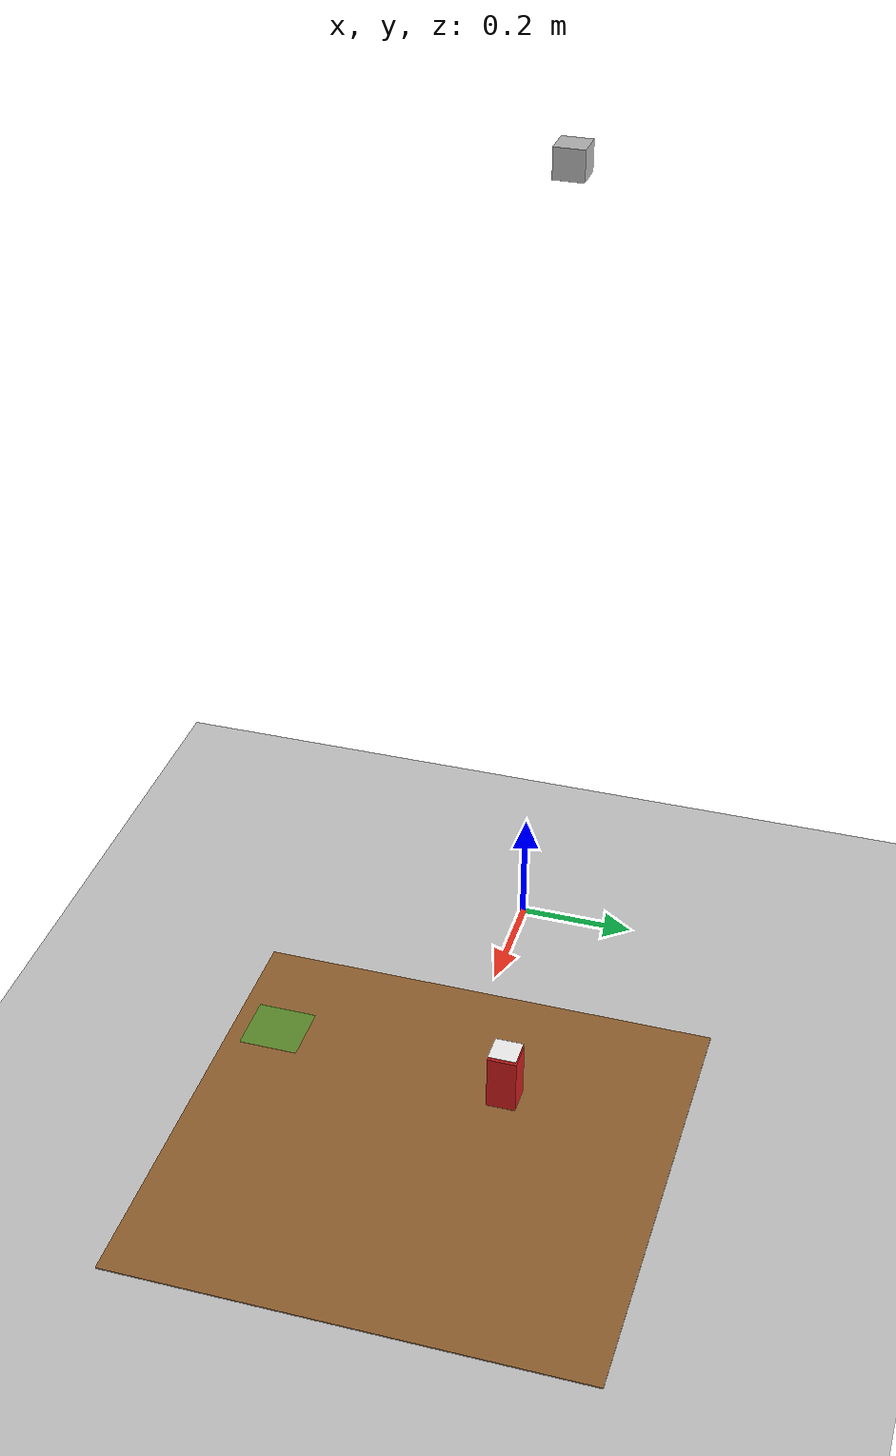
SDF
<sdf version='1.10'>
  <world name='empty'>
    <physics name='1ms' type='ignored'>
      <max_step_size>0.001</max_step_size>
      <real_time_factor>1</real_time_factor>
      <real_time_update_rate>1000</real_time_update_rate>
    </physics>
    <plugin name='gz::sim::systems::Physics' filename='gz-sim-physics-system'/>
    <plugin name='gz::sim::systems::UserCommands' filename='gz-sim-user-commands-system'/>
    <plugin name='gz::sim::systems::SceneBroadcaster' filename='gz-sim-scene-broadcaster-system'/>
    <plugin name='gz::sim::systems::Contact' filename='gz-sim-contact-system'/>
    <plugin
      filename="gz-sim-sensors-system"
      name="gz::sim::systems::Sensors">
      <render_engine>ogre2</render_engine>
    </plugin>
    <gravity>0 0 -9.8000000000000007</gravity>
    <magnetic_field>5.5644999999999998e-06 2.2875799999999999e-05 -4.2388400000000002e-05</magnetic_field>
    <atmosphere type='adiabatic'/>
    <scene>
      <ambient>0.400000006 0.400000006 0.400000006 1</ambient>
      <background>0.699999988 0.699999988 0.699999988 1</background>
      <shadows>true</shadows>
    </scene>
    <model name='ground_plane'>
      <static>true</static>
      <link name='link'>
        <collision name='collision'>
          <geometry>
            <plane>
              <normal>0 0 1</normal>
              <size>100 100</size>
            </plane>
          </geometry>
          <surface>
            <friction>
              <ode/>
            </friction>
            <bounce/>
            <contact/>
          </surface>
        </collision>
        <visual name='visual'>
          <geometry>
            <plane>
              <normal>0 0 1</normal>
              <size>100 100</size>
            </plane>
          </geometry>
          <material>
            <ambient>0.800000012 0.800000012 0.800000012 1</ambient>
            <diffuse>0.800000012 0.800000012 0.800000012 1</diffuse>
            <specular>0.800000012 0.800000012 0.800000012 1</specular>
          </material>
        </visual>
        <pose>0 0 0 0 0 0</pose>
        <inertial>
          <pose>0 0 0 0 0 0</pose>
          <mass>1</mass>
          <inertia>
            <ixx>1</ixx>
            <ixy>0</ixy>
            <ixz>0</ixz>
            <iyy>1</iyy>
            <iyz>0</iyz>
            <izz>1</izz>
          </inertia>
        </inertial>
        <enable_wind>false</enable_wind>
      </link>
      <pose>0 0 0 0 0 0</pose>
      <self_collide>false</self_collide>
    </model>
    <light name='sun' type='directional'>
      <pose>0 0 5 0 0 0</pose>
      <cast_shadows>true</cast_shadows>
      <intensity>1</intensity>
      <direction>-0.5 0.10000000000000001 -0.90000000000000002</direction>
      <diffuse>0.800000012 0.800000012 0.800000012 1</diffuse>
      <specular>0.200000003 0.200000003 0.200000003 1</specular>
      <attenuation>
        <range>1000</range>
        <linear>0.01</linear>
        <constant>0.90000000000000002</constant>
        <quadratic>0.001</quadratic>
      </attenuation>
      <spot>
        <inner_angle>0</inner_angle>
        <outer_angle>0</outer_angle>
        <falloff>0</falloff>
      </spot>
    </light>

    <model name="camera">
      <static>true</static>
      <pose>0 0 1.5 0 1.57 0</pose>
      <link name="link">
        <pose>0.05 0.05 0.05 0 0 0</pose>
        <inertial>
          <mass>0.1</mass>
          <inertia>
            <ixx>0.000166667</ixx>
            <iyy>0.000166667</iyy>
            <izz>0.000166667</izz>
          </inertia>
        </inertial>
        <collision name="collision">
          <geometry>
            <box>
              <size>0.05 0.05 0.05</size>
            </box>
          </geometry>
        </collision>
        <visual name="visual">
          <geometry>
            <box>
              <size>0.05 0.05 0.05</size>
            </box>
          </geometry>
        </visual>
        <sensor name="camera" type="camera">
          <camera>
            <horizontal_fov>1.047</horizontal_fov>
            <image>
              <width>1000</width>
              <height>1000</height>
            </image>
            <clip>
              <near>0.1</near>
              <far>100</far>
            </clip>
          </camera>
          <always_on>1</always_on>
          <update_rate>30</update_rate>
          <visualize>false</visualize>
          <topic>camera</topic>
        </sensor>
      </link>
    </model>

    <!-- TABLE DE TRAVAIL (Static - Support pour objet) -->
    <model name="work_table">
      <static>true</static>
      <pose>0.65 0.0 -0.025 0 0 0</pose>
      <link name="table_link">
        <inertial>
          <mass>10.0</mass>
          <inertia>
            <ixx>0.5</ixx>
            <iyy>0.5</iyy>
            <izz>0.4</izz>
          </inertia>
        </inertial>

        <!-- Surface de collision (top) -->
        <collision name="table_top_collision">
          <pose>0 0 0 0 0 0</pose>
          <geometry>
            <box>
              <size>0.8 0.8 0.05</size>
            </box>
          </geometry>
          <surface>
            <friction>
              <ode>
                <mu>0.3</mu>
                <mu2>0.3</mu2>
              </ode>
            </friction>
            <bounce>
              <restitution_coefficient>0.1</restitution_coefficient>
            </bounce>
          </surface>
        </collision>

        <!-- Visuel identique -->
        <visual name="table_top_visual">
          <pose>0 0 0 0 0 0</pose>
          <geometry>
            <box>
              <size>0.8 0.8 0.05</size>
            </box>
          </geometry>
          <material>
            <ambient>0.6 0.4 0.2 1</ambient>
            <diffuse>0.6 0.4 0.2 1</diffuse>
            <specular>0.1 0.1 0.1 1</specular>
          </material>
        </visual>
      </link>
    </model>

    <!-- OBJET À SAISIR (Dynamic - Saisi par le gripper) -->
    <model name="pick_object">
      <static>false</static>
      <pose>0.5 0.1 0.05 0 0 0</pose>
      <link name="object_link">
        <inertial>
          <mass>0.2</mass>
          <inertia>
            <ixx>0.000333</ixx>
            <iyy>0.000333</iyy>
            <izz>0.000333</izz>
          </inertia>
        </inertial>

        <!-- Géométrie de collision -->
        <collision name="object_collision">
          <geometry>
            <box>
              <size>0.05 0.05 0.10</size>
            </box>
          </geometry>
          <surface>
            <friction>
              <ode>
                <mu>0.5</mu>
                <mu2>0.5</mu2>
              </ode>
            </friction>
            <bounce>
              <restitution_coefficient>0.2</restitution_coefficient>
            </bounce>
            <contact>
              <ode>
                <kp>100000</kp>
                <kd>1</kd>
                <max_vel>0.1</max_vel>
                <min_depth>0.001</min_depth>
              </ode>
            </contact>
          </surface>
        </collision>

        <!-- Visuel rouge vif (bien visible) -->
        <visual name="object_visual">
          <geometry>
            <box>
              <size>0.05 0.05 0.10</size>
            </box>
          </geometry>
          <material>
            <ambient>0.8 0.1 0.1 1</ambient>
            <diffuse>0.8 0.1 0.1 1</diffuse>
            <specular>0.3 0.3 0.3 1</specular>
          </material>
        </visual>

        <!-- Marqueur de référence (top) -->
        <visual name="object_marker_visual">
          <pose>0 0 0.055 0 0 0</pose>
          <geometry>
            <box>
              <size>0.048 0.048 0.001</size>
            </box>
          </geometry>
          <material>
            <ambient>1 1 1 1</ambient>
            <diffuse>1 1 1 1</diffuse>
          </material>
        </visual>
      </link>
    </model>

    <!-- ZONE DE DÉPÔT (Visual marker - Zone tactile pour place) -->
    <model name="place_zone">
      <static>true</static>
      <pose>0.5 -0.3 0.051 0 0 0</pose>
      <link name="zone_link">
        <visual name="zone_visual">
          <geometry>
            <box>
              <size>0.1 0.1 0.001</size>
            </box>
          </geometry>
          <material>
            <ambient>0.2 0.8 0.2 0.5</ambient>
            <diffuse>0.2 0.8 0.2 0.5</diffuse>
            <transparency>0.5</transparency>
          </material>
        </visual>
      </link>
    </model>
  </world>

</sdf>
